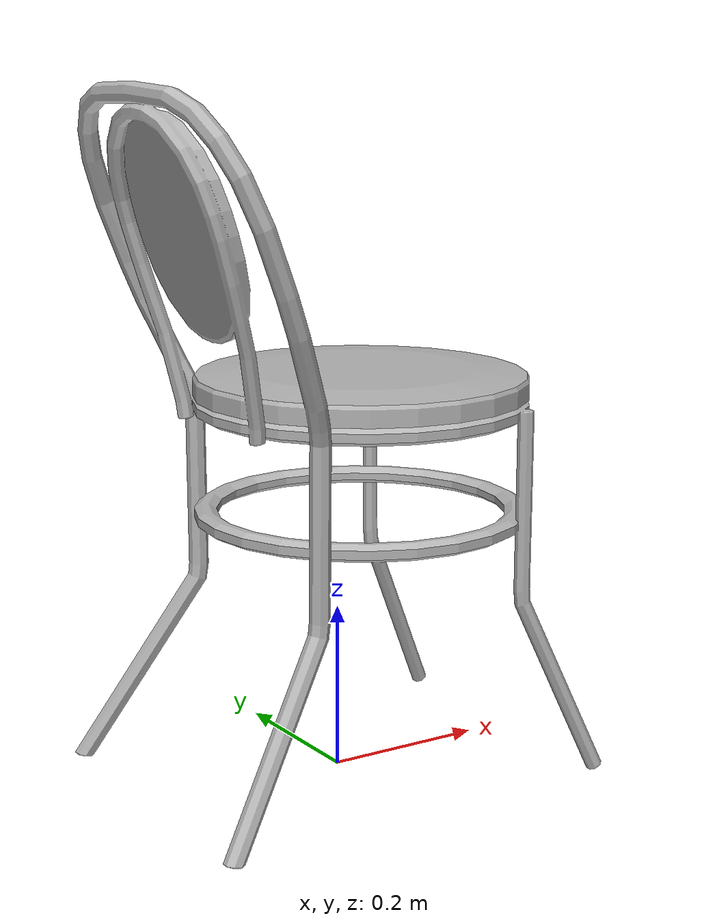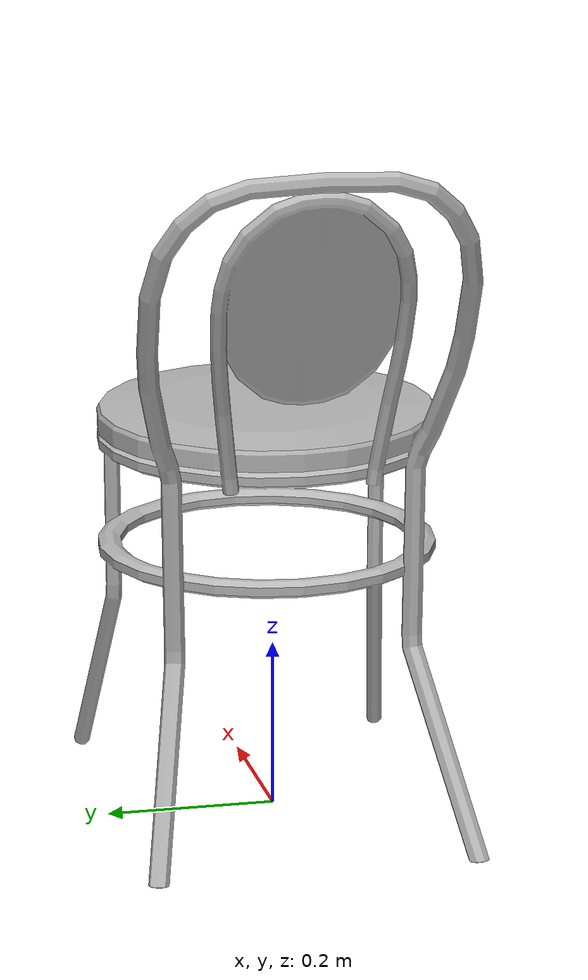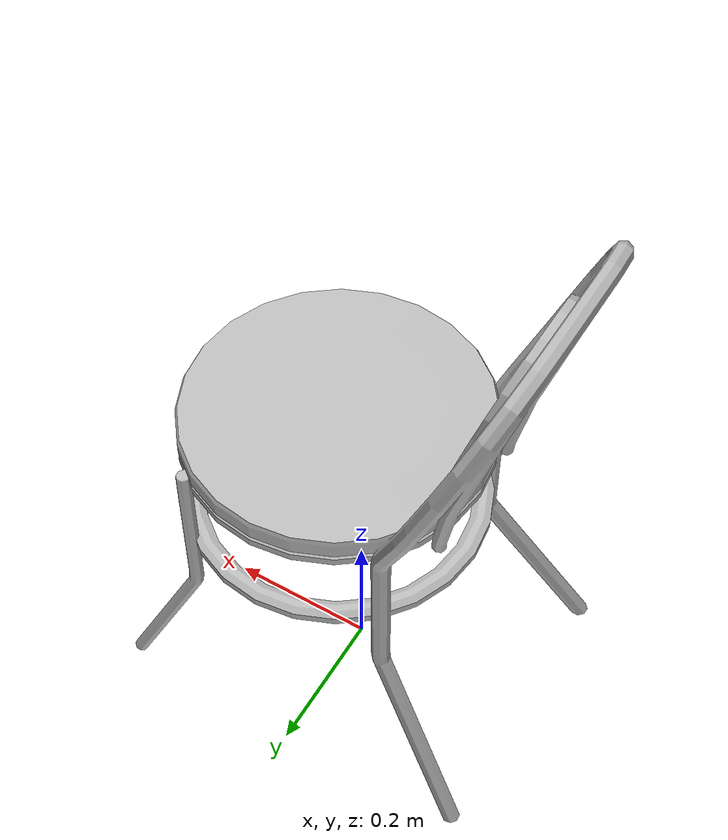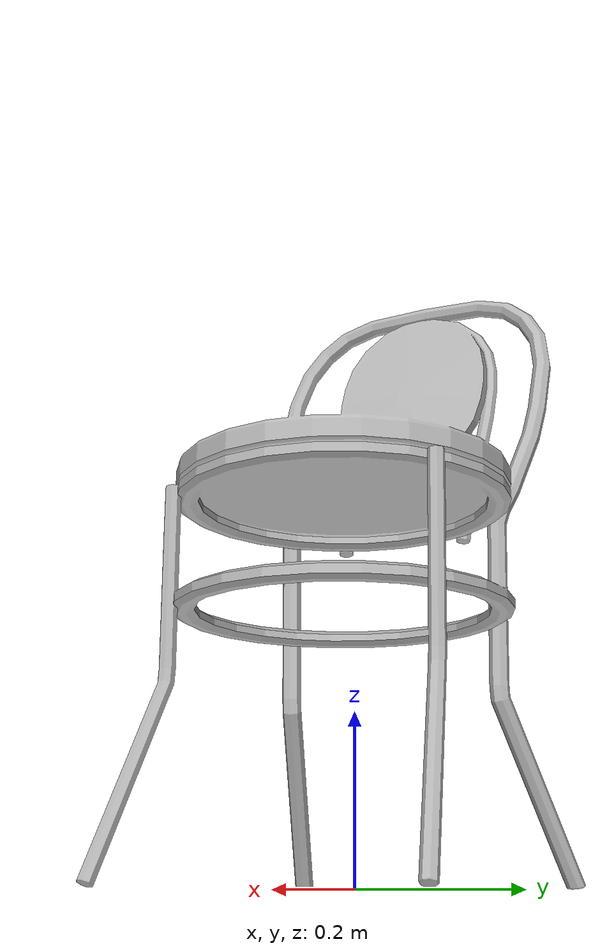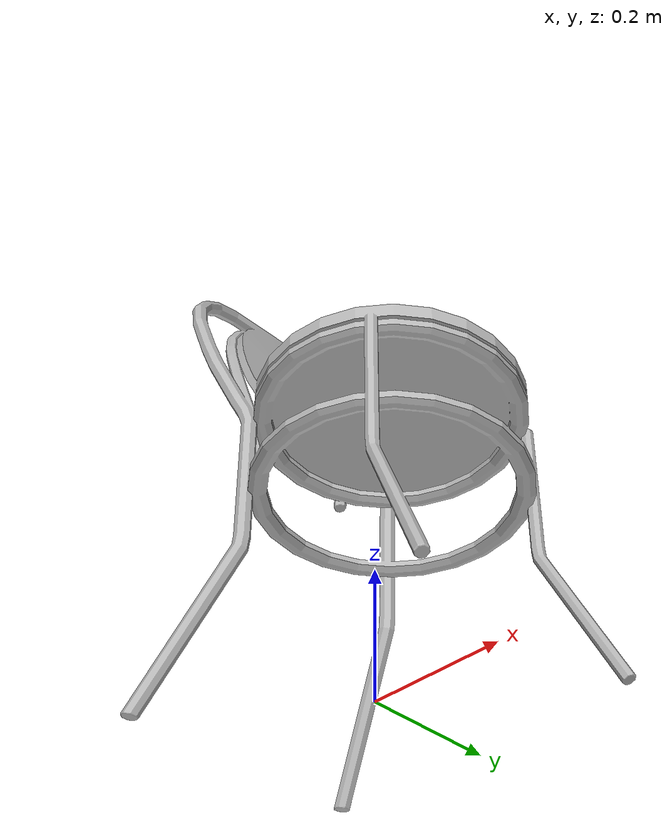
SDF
<?xml version='1.0'?>
<sdf version='1.4'>
  <model name='90'>
    <pose>0 0 0 0 0 0</pose>
    <static>true</static>
    <link name='link'>
      <collision name='collision'>
        <pose>0 0 0 0 0 0</pose>
        <geometry>
          <box>
            <size>0.53 0.400088 2</size>
          </box>
        </geometry>
      </collision>
      <visual name='visual'>
        <pose>0 0 0 0 0 0</pose>
        <geometry>
          <mesh><uri>model://90/90.dae</uri></mesh>
        </geometry>
      </visual>
    </link>
  </model>
</sdf>
